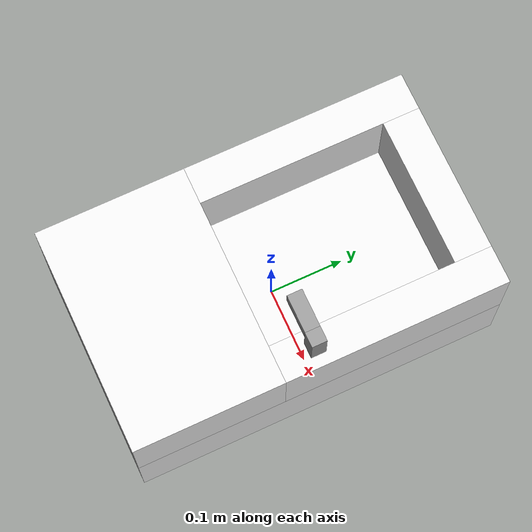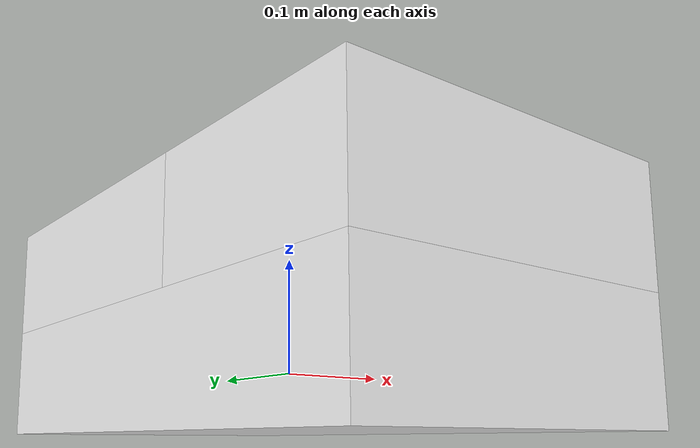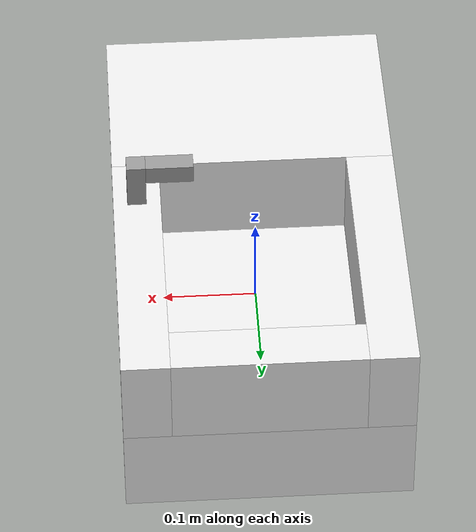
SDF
<?xml version='1.0'?>
<sdf version='1.7'>
  <model name='Sink'>
    <link name='link_17'>
      <inertial>
        <mass>1</mass>
        <inertia>
          <ixx>0.166667</ixx>
          <ixy>0</ixy>
          <ixz>0</ixz>
          <iyy>0.166667</iyy>
          <iyz>0</iyz>
          <izz>0.166667</izz>
        </inertia>
        <pose>0 0 0 0 -0 0</pose>
      </inertial>
      <pose>0 0 0 0 -0 0</pose>
      <gravity>1</gravity>
      <self_collide>0</self_collide>
      <kinematic>0</kinematic>
      <enable_wind>0</enable_wind>
      <visual name='visual'>
        <pose>0 0 0 0 -0 0</pose>
        <geometry>
          <box>
            <size>0.3 0.5 0.1</size>
          </box>
        </geometry>
        <material>
          <lighting>1</lighting>
          <script>
            <uri>file://media/materials/scripts/gazebo.material</uri>
            <name>Gazebo/White</name>
          </script>
          <shader type='pixel'>
            <normal_map>__default__</normal_map>
          </shader>
          <ambient>0.3 0.3 0.3 1</ambient>
          <diffuse>1 1 1 1</diffuse>
          <specular>0.01 0.01 0.01 1</specular>
          <emissive>0 0 0 1</emissive>
        </material>
        <transparency>0</transparency>
        <cast_shadows>1</cast_shadows>
      </visual>
      <collision name='collision'>
        <laser_retro>0</laser_retro>
        <max_contacts>10</max_contacts>
        <pose>0 0 0 0 -0 0</pose>
        <geometry>
          <box>
            <size>0.3 0.5 0.1</size>
          </box>
        </geometry>
        <surface>
          <friction>
            <ode>
              <mu>1</mu>
              <mu2>1</mu2>
              <fdir1>0 0 0</fdir1>
              <slip1>0</slip1>
              <slip2>0</slip2>
            </ode>
            <torsional>
              <coefficient>1</coefficient>
              <patch_radius>0</patch_radius>
              <surface_radius>0</surface_radius>
              <use_patch_radius>1</use_patch_radius>
              <ode>
                <slip>0</slip>
              </ode>
            </torsional>
          </friction>
          <bounce>
            <restitution_coefficient>0</restitution_coefficient>
            <threshold>1e+06</threshold>
          </bounce>
          <contact>
            <collide_without_contact>0</collide_without_contact>
            <collide_without_contact_bitmask>1</collide_without_contact_bitmask>
            <collide_bitmask>1</collide_bitmask>
            <ode>
              <soft_cfm>0</soft_cfm>
              <soft_erp>0.2</soft_erp>
              <kp>1e+13</kp>
              <kd>1</kd>
              <max_vel>0.01</max_vel>
              <min_depth>0</min_depth>
            </ode>
            <bullet>
              <split_impulse>1</split_impulse>
              <split_impulse_penetration_threshold>-0.01</split_impulse_penetration_threshold>
              <soft_cfm>0</soft_cfm>
              <soft_erp>0.2</soft_erp>
              <kp>1e+13</kp>
              <kd>1</kd>
            </bullet>
          </contact>
        </surface>
      </collision>
    </link>
    <link name='link_18'>
      <inertial>
        <mass>1</mass>
        <inertia>
          <ixx>0.166667</ixx>
          <ixy>0</ixy>
          <ixz>0</ixz>
          <iyy>0.166667</iyy>
          <iyz>0</iyz>
          <izz>0.166667</izz>
        </inertia>
        <pose>0 0 0 0 -0 0</pose>
      </inertial>
      <pose>0 -0.15 0.1 0 -0 0</pose>
      <gravity>1</gravity>
      <self_collide>0</self_collide>
      <kinematic>0</kinematic>
      <enable_wind>0</enable_wind>
      <visual name='visual'>
        <pose>0 0 0 0 -0 0</pose>
        <geometry>
          <box>
            <size>0.3 0.2 0.1</size>
          </box>
        </geometry>
        <material>
          <lighting>1</lighting>
          <script>
            <uri>file://media/materials/scripts/gazebo.material</uri>
            <name>Gazebo/White</name>
          </script>
          <shader type='pixel'>
            <normal_map>__default__</normal_map>
          </shader>
          <ambient>0.3 0.3 0.3 1</ambient>
          <diffuse>1 1 1 1</diffuse>
          <specular>0.01 0.01 0.01 1</specular>
          <emissive>0 0 0 1</emissive>
        </material>
        <transparency>0</transparency>
        <cast_shadows>1</cast_shadows>
      </visual>
      <collision name='collision'>
        <laser_retro>0</laser_retro>
        <max_contacts>10</max_contacts>
        <pose>0 0 0 0 -0 0</pose>
        <geometry>
          <box>
            <size>0.3 0.2 0.1</size>
          </box>
        </geometry>
        <surface>
          <friction>
            <ode>
              <mu>1</mu>
              <mu2>1</mu2>
              <fdir1>0 0 0</fdir1>
              <slip1>0</slip1>
              <slip2>0</slip2>
            </ode>
            <torsional>
              <coefficient>1</coefficient>
              <patch_radius>0</patch_radius>
              <surface_radius>0</surface_radius>
              <use_patch_radius>1</use_patch_radius>
              <ode>
                <slip>0</slip>
              </ode>
            </torsional>
          </friction>
          <bounce>
            <restitution_coefficient>0</restitution_coefficient>
            <threshold>1e+06</threshold>
          </bounce>
          <contact>
            <collide_without_contact>0</collide_without_contact>
            <collide_without_contact_bitmask>1</collide_without_contact_bitmask>
            <collide_bitmask>1</collide_bitmask>
            <ode>
              <soft_cfm>0</soft_cfm>
              <soft_erp>0.2</soft_erp>
              <kp>1e+13</kp>
              <kd>1</kd>
              <max_vel>0.01</max_vel>
              <min_depth>0</min_depth>
            </ode>
            <bullet>
              <split_impulse>1</split_impulse>
              <split_impulse_penetration_threshold>-0.01</split_impulse_penetration_threshold>
              <soft_cfm>0</soft_cfm>
              <soft_erp>0.2</soft_erp>
              <kp>1e+13</kp>
              <kd>1</kd>
            </bullet>
          </contact>
        </surface>
      </collision>
    </link>
    <link name='link_19'>
      <inertial>
        <mass>1</mass>
        <inertia>
          <ixx>0.166667</ixx>
          <ixy>0</ixy>
          <ixz>0</ixz>
          <iyy>0.166667</iyy>
          <iyz>0</iyz>
          <izz>0.166667</izz>
        </inertia>
        <pose>0 0 0 0 -0 0</pose>
      </inertial>
      <pose>0.125 0.1 0.1 0 -0 0</pose>
      <gravity>1</gravity>
      <self_collide>0</self_collide>
      <kinematic>0</kinematic>
      <enable_wind>0</enable_wind>
      <visual name='visual'>
        <pose>0 0 0 0 -0 0</pose>
        <geometry>
          <box>
            <size>0.05 0.3 0.1</size>
          </box>
        </geometry>
        <material>
          <lighting>1</lighting>
          <script>
            <uri>file://media/materials/scripts/gazebo.material</uri>
            <name>Gazebo/White</name>
          </script>
          <shader type='pixel'>
            <normal_map>__default__</normal_map>
          </shader>
          <ambient>0.3 0.3 0.3 1</ambient>
          <diffuse>1 1 1 1</diffuse>
          <specular>0.01 0.01 0.01 1</specular>
          <emissive>0 0 0 1</emissive>
        </material>
        <transparency>0</transparency>
        <cast_shadows>1</cast_shadows>
      </visual>
      <collision name='collision'>
        <laser_retro>0</laser_retro>
        <max_contacts>10</max_contacts>
        <pose>0 0 0 0 -0 0</pose>
        <geometry>
          <box>
            <size>0.05 0.3 0.1</size>
          </box>
        </geometry>
        <surface>
          <friction>
            <ode>
              <mu>1</mu>
              <mu2>1</mu2>
              <fdir1>0 0 0</fdir1>
              <slip1>0</slip1>
              <slip2>0</slip2>
            </ode>
            <torsional>
              <coefficient>1</coefficient>
              <patch_radius>0</patch_radius>
              <surface_radius>0</surface_radius>
              <use_patch_radius>1</use_patch_radius>
              <ode>
                <slip>0</slip>
              </ode>
            </torsional>
          </friction>
          <bounce>
            <restitution_coefficient>0</restitution_coefficient>
            <threshold>1e+06</threshold>
          </bounce>
          <contact>
            <collide_without_contact>0</collide_without_contact>
            <collide_without_contact_bitmask>1</collide_without_contact_bitmask>
            <collide_bitmask>1</collide_bitmask>
            <ode>
              <soft_cfm>0</soft_cfm>
              <soft_erp>0.2</soft_erp>
              <kp>1e+13</kp>
              <kd>1</kd>
              <max_vel>0.01</max_vel>
              <min_depth>0</min_depth>
            </ode>
            <bullet>
              <split_impulse>1</split_impulse>
              <split_impulse_penetration_threshold>-0.01</split_impulse_penetration_threshold>
              <soft_cfm>0</soft_cfm>
              <soft_erp>0.2</soft_erp>
              <kp>1e+13</kp>
              <kd>1</kd>
            </bullet>
          </contact>
        </surface>
      </collision>
    </link>
    <link name='link_19_clone'>
      <inertial>
        <mass>1</mass>
        <inertia>
          <ixx>0.166667</ixx>
          <ixy>0</ixy>
          <ixz>0</ixz>
          <iyy>0.166667</iyy>
          <iyz>0</iyz>
          <izz>0.166667</izz>
        </inertia>
        <pose>0 0 0 0 -0 0</pose>
      </inertial>
      <pose>-0.125 0.1 0.1 0 -0 0</pose>
      <gravity>1</gravity>
      <self_collide>0</self_collide>
      <kinematic>0</kinematic>
      <enable_wind>0</enable_wind>
      <visual name='visual'>
        <pose>0 0 0 0 -0 0</pose>
        <geometry>
          <box>
            <size>0.05 0.3 0.1</size>
          </box>
        </geometry>
        <material>
          <lighting>1</lighting>
          <script>
            <uri>file://media/materials/scripts/gazebo.material</uri>
            <name>Gazebo/White</name>
          </script>
          <shader type='pixel'>
            <normal_map>__default__</normal_map>
          </shader>
          <ambient>0.3 0.3 0.3 1</ambient>
          <diffuse>1 1 1 1</diffuse>
          <specular>0.01 0.01 0.01 1</specular>
          <emissive>0 0 0 1</emissive>
        </material>
        <transparency>0</transparency>
        <cast_shadows>1</cast_shadows>
      </visual>
      <collision name='collision'>
        <laser_retro>0</laser_retro>
        <max_contacts>10</max_contacts>
        <pose>0 0 0 0 -0 0</pose>
        <geometry>
          <box>
            <size>0.05 0.3 0.1</size>
          </box>
        </geometry>
        <surface>
          <friction>
            <ode>
              <mu>1</mu>
              <mu2>1</mu2>
              <fdir1>0 0 0</fdir1>
              <slip1>0</slip1>
              <slip2>0</slip2>
            </ode>
            <torsional>
              <coefficient>1</coefficient>
              <patch_radius>0</patch_radius>
              <surface_radius>0</surface_radius>
              <use_patch_radius>1</use_patch_radius>
              <ode>
                <slip>0</slip>
              </ode>
            </torsional>
          </friction>
          <bounce>
            <restitution_coefficient>0</restitution_coefficient>
            <threshold>1e+06</threshold>
          </bounce>
          <contact>
            <collide_without_contact>0</collide_without_contact>
            <collide_without_contact_bitmask>1</collide_without_contact_bitmask>
            <collide_bitmask>1</collide_bitmask>
            <ode>
              <soft_cfm>0</soft_cfm>
              <soft_erp>0.2</soft_erp>
              <kp>1e+13</kp>
              <kd>1</kd>
              <max_vel>0.01</max_vel>
              <min_depth>0</min_depth>
            </ode>
            <bullet>
              <split_impulse>1</split_impulse>
              <split_impulse_penetration_threshold>-0.01</split_impulse_penetration_threshold>
              <soft_cfm>0</soft_cfm>
              <soft_erp>0.2</soft_erp>
              <kp>1e+13</kp>
              <kd>1</kd>
            </bullet>
          </contact>
        </surface>
      </collision>
    </link>
    <link name='link_20'>
      <inertial>
        <mass>1</mass>
        <inertia>
          <ixx>0.166667</ixx>
          <ixy>0</ixy>
          <ixz>0</ixz>
          <iyy>0.166667</iyy>
          <iyz>0</iyz>
          <izz>0.166667</izz>
        </inertia>
        <pose>0 0 0 0 -0 0</pose>
      </inertial>
      <pose>0 0.225 0.1 0 -0 0</pose>
      <gravity>1</gravity>
      <self_collide>0</self_collide>
      <kinematic>0</kinematic>
      <enable_wind>0</enable_wind>
      <visual name='visual'>
        <pose>0 0 0 0 -0 0</pose>
        <geometry>
          <box>
            <size>0.2 0.05 0.1</size>
          </box>
        </geometry>
        <material>
          <lighting>1</lighting>
          <script>
            <uri>file://media/materials/scripts/gazebo.material</uri>
            <name>Gazebo/White</name>
          </script>
          <shader type='pixel'>
            <normal_map>__default__</normal_map>
          </shader>
          <ambient>0.3 0.3 0.3 1</ambient>
          <diffuse>1 1 1 1</diffuse>
          <specular>0.01 0.01 0.01 1</specular>
          <emissive>0 0 0 1</emissive>
        </material>
        <transparency>0</transparency>
        <cast_shadows>1</cast_shadows>
      </visual>
      <collision name='collision'>
        <laser_retro>0</laser_retro>
        <max_contacts>10</max_contacts>
        <pose>0 0 0 0 -0 0</pose>
        <geometry>
          <box>
            <size>0.2 0.05 0.1</size>
          </box>
        </geometry>
        <surface>
          <friction>
            <ode>
              <mu>1</mu>
              <mu2>1</mu2>
              <fdir1>0 0 0</fdir1>
              <slip1>0</slip1>
              <slip2>0</slip2>
            </ode>
            <torsional>
              <coefficient>1</coefficient>
              <patch_radius>0</patch_radius>
              <surface_radius>0</surface_radius>
              <use_patch_radius>1</use_patch_radius>
              <ode>
                <slip>0</slip>
              </ode>
            </torsional>
          </friction>
          <bounce>
            <restitution_coefficient>0</restitution_coefficient>
            <threshold>1e+06</threshold>
          </bounce>
          <contact>
            <collide_without_contact>0</collide_without_contact>
            <collide_without_contact_bitmask>1</collide_without_contact_bitmask>
            <collide_bitmask>1</collide_bitmask>
            <ode>
              <soft_cfm>0</soft_cfm>
              <soft_erp>0.2</soft_erp>
              <kp>1e+13</kp>
              <kd>1</kd>
              <max_vel>0.01</max_vel>
              <min_depth>0</min_depth>
            </ode>
            <bullet>
              <split_impulse>1</split_impulse>
              <split_impulse_penetration_threshold>-0.01</split_impulse_penetration_threshold>
              <soft_cfm>0</soft_cfm>
              <soft_erp>0.2</soft_erp>
              <kp>1e+13</kp>
              <kd>1</kd>
            </bullet>
          </contact>
        </surface>
      </collision>
    </link>
    <link name='link_22'>
      <inertial>
        <mass>1</mass>
        <inertia>
          <ixx>0.166667</ixx>
          <ixy>0</ixy>
          <ixz>0</ixz>
          <iyy>0.166667</iyy>
          <iyz>0</iyz>
          <izz>0.166667</izz>
        </inertia>
        <pose>0 0 0 0 -0 0</pose>
      </inertial>
      <pose>0.125 0 0.175 0 -0 0</pose>
      <gravity>1</gravity>
      <self_collide>0</self_collide>
      <kinematic>0</kinematic>
      <enable_wind>0</enable_wind>
      <visual name='visual'>
        <pose>0 0 0 0 -0 0</pose>
        <geometry>
          <box>
            <size>0.02 0.02 0.05</size>
          </box>
        </geometry>
        <material>
          <lighting>1</lighting>
          <script>
            <uri>file://media/materials/scripts/gazebo.material</uri>
            <name>Gazebo/Grey</name>
          </script>
          <shader type='pixel'>
            <normal_map>__default__</normal_map>
          </shader>
          <ambient>0.3 0.3 0.3 1</ambient>
          <diffuse>0.7 0.7 0.7 1</diffuse>
          <specular>0.01 0.01 0.01 1</specular>
          <emissive>0 0 0 1</emissive>
        </material>
        <transparency>0</transparency>
        <cast_shadows>1</cast_shadows>
      </visual>
      <collision name='collision'>
        <laser_retro>0</laser_retro>
        <max_contacts>10</max_contacts>
        <pose>0 0 0 0 -0 0</pose>
        <geometry>
          <box>
            <size>0.02 0.02 0.05</size>
          </box>
        </geometry>
        <surface>
          <friction>
            <ode>
              <mu>1</mu>
              <mu2>1</mu2>
              <fdir1>0 0 0</fdir1>
              <slip1>0</slip1>
              <slip2>0</slip2>
            </ode>
            <torsional>
              <coefficient>1</coefficient>
              <patch_radius>0</patch_radius>
              <surface_radius>0</surface_radius>
              <use_patch_radius>1</use_patch_radius>
              <ode>
                <slip>0</slip>
              </ode>
            </torsional>
          </friction>
          <bounce>
            <restitution_coefficient>0</restitution_coefficient>
            <threshold>1e+06</threshold>
          </bounce>
          <contact>
            <collide_without_contact>0</collide_without_contact>
            <collide_without_contact_bitmask>1</collide_without_contact_bitmask>
            <collide_bitmask>1</collide_bitmask>
            <ode>
              <soft_cfm>0</soft_cfm>
              <soft_erp>0.2</soft_erp>
              <kp>1e+13</kp>
              <kd>1</kd>
              <max_vel>0.01</max_vel>
              <min_depth>0</min_depth>
            </ode>
            <bullet>
              <split_impulse>1</split_impulse>
              <split_impulse_penetration_threshold>-0.01</split_impulse_penetration_threshold>
              <soft_cfm>0</soft_cfm>
              <soft_erp>0.2</soft_erp>
              <kp>1e+13</kp>
              <kd>1</kd>
            </bullet>
          </contact>
        </surface>
      </collision>
    </link>
    <link name='link_22_clone'>
      <inertial>
        <mass>1</mass>
        <inertia>
          <ixx>0.166667</ixx>
          <ixy>0</ixy>
          <ixz>0</ixz>
          <iyy>0.166667</iyy>
          <iyz>0</iyz>
          <izz>0.166667</izz>
        </inertia>
        <pose>0 0 0 0 -0 0</pose>
      </inertial>
      <pose>0.09 0 0.19 0 -0 0</pose>
      <gravity>1</gravity>
      <self_collide>0</self_collide>
      <kinematic>0</kinematic>
      <enable_wind>0</enable_wind>
      <visual name='visual'>
        <pose>0 0 0 0 -0 0</pose>
        <geometry>
          <box>
            <size>0.05 0.02 0.02</size>
          </box>
        </geometry>
        <material>
          <lighting>1</lighting>
          <script>
            <uri>file://media/materials/scripts/gazebo.material</uri>
            <name>Gazebo/Grey</name>
          </script>
          <shader type='pixel'>
            <normal_map>__default__</normal_map>
          </shader>
          <ambient>0.3 0.3 0.3 1</ambient>
          <diffuse>0.7 0.7 0.7 1</diffuse>
          <specular>0.01 0.01 0.01 1</specular>
          <emissive>0 0 0 1</emissive>
        </material>
        <transparency>0</transparency>
        <cast_shadows>1</cast_shadows>
      </visual>
      <collision name='collision'>
        <laser_retro>0</laser_retro>
        <max_contacts>10</max_contacts>
        <pose>0 0 0 0 -0 0</pose>
        <geometry>
          <box>
            <size>0.05 0.02 0.02</size>
          </box>
        </geometry>
        <surface>
          <friction>
            <ode>
              <mu>1</mu>
              <mu2>1</mu2>
              <fdir1>0 0 0</fdir1>
              <slip1>0</slip1>
              <slip2>0</slip2>
            </ode>
            <torsional>
              <coefficient>1</coefficient>
              <patch_radius>0</patch_radius>
              <surface_radius>0</surface_radius>
              <use_patch_radius>1</use_patch_radius>
              <ode>
                <slip>0</slip>
              </ode>
            </torsional>
          </friction>
          <bounce>
            <restitution_coefficient>0</restitution_coefficient>
            <threshold>1e+06</threshold>
          </bounce>
          <contact>
            <collide_without_contact>0</collide_without_contact>
            <collide_without_contact_bitmask>1</collide_without_contact_bitmask>
            <collide_bitmask>1</collide_bitmask>
            <ode>
              <soft_cfm>0</soft_cfm>
              <soft_erp>0.2</soft_erp>
              <kp>1e+13</kp>
              <kd>1</kd>
              <max_vel>0.01</max_vel>
              <min_depth>0</min_depth>
            </ode>
            <bullet>
              <split_impulse>1</split_impulse>
              <split_impulse_penetration_threshold>-0.01</split_impulse_penetration_threshold>
              <soft_cfm>0</soft_cfm>
              <soft_erp>0.2</soft_erp>
              <kp>1e+13</kp>
              <kd>1</kd>
            </bullet>
          </contact>
        </surface>
      </collision>
    </link>
    <static>1</static>
    <allow_auto_disable>1</allow_auto_disable>
  </model>
</sdf>
